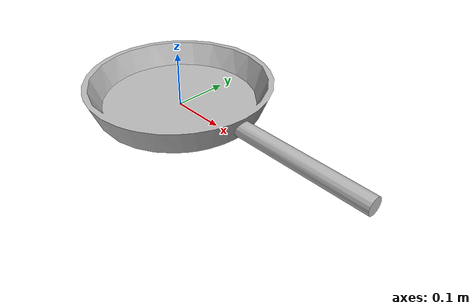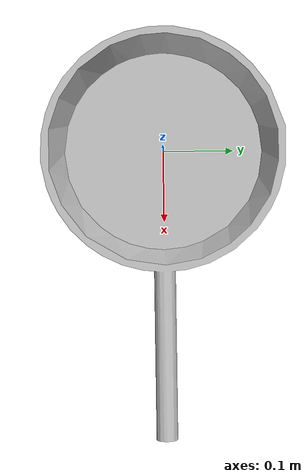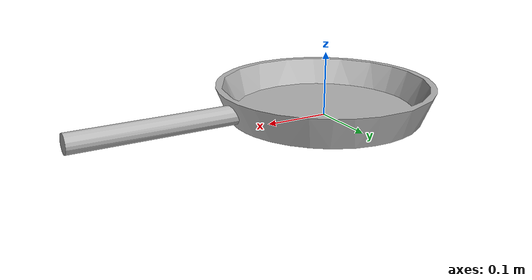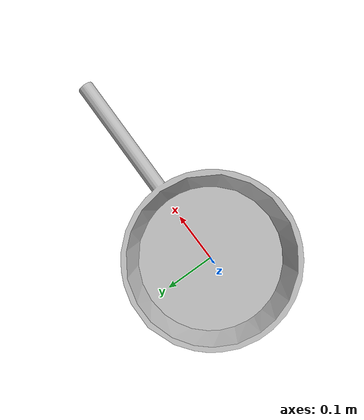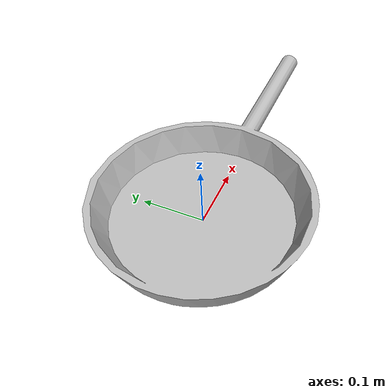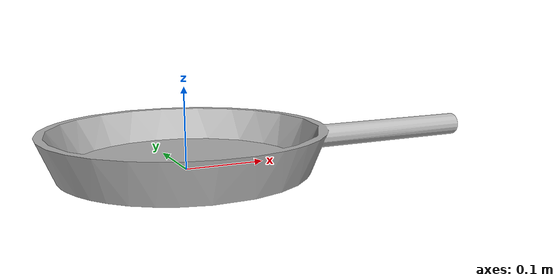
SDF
<?xml version='1.0'?>
<sdf version='1.6'>
    <model name='simple_frying_pan'>
        <pose>0 0 0 0 0 0</pose>
        <link name='link'>
            <pose>0 0 0 0 0 0</pose>
            <inertial>
                <mass>1</mass>
                <pose>0.002625 0.0 0.01465 0 0 0</pose>
                <inertia>
                    <ixx>0.007971675</ixx>
                    <iyy>0.008713309</iyy>
                    <izz>0.016311566</izz>
                    <ixy>-1.69694542e-019</ixy>
                    <ixz>-0.000025788</ixz>
                    <iyz>-6.28650663e-021</iyz>
                </inertia>
            </inertial>
            <collision name='collision'>
                <geometry>
                    <mesh>
                        <uri>model://simple_frying_pan/mesh.dae</uri>
                    </mesh>
                </geometry>
                <surface>
                    <friction>
                        <ode>
                          <mu>0.4</mu>
                          <mu2>0.4</mu2>
                        </ode>
                        <bullet>
                            <friction>0.4</friction>
                            <friction2>0.4</friction2>
                        </bullet>
                    </friction>
                </surface>
            </collision>
            <visual name='visual'>
                <geometry>
                    <mesh>
                        <uri>model://simple_frying_pan/mesh.dae</uri>
                    </mesh>
                </geometry>
            </visual>
        </link>
    </model>
</sdf>
